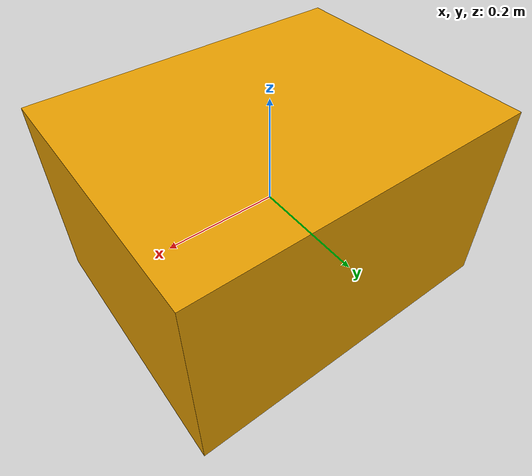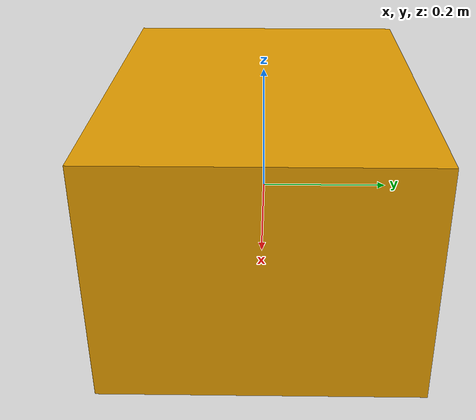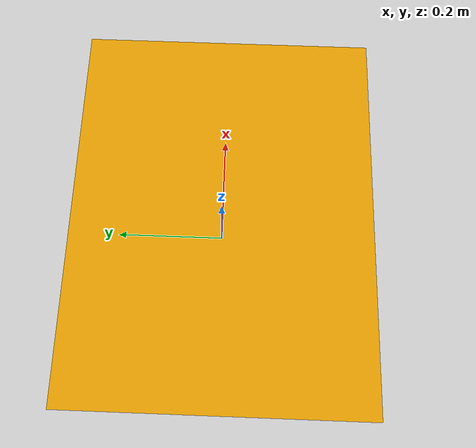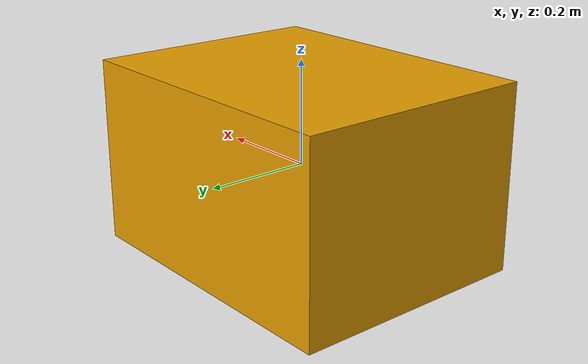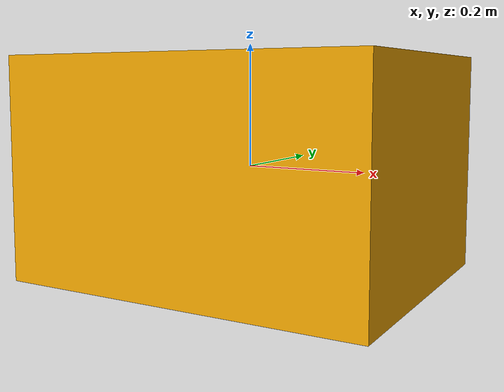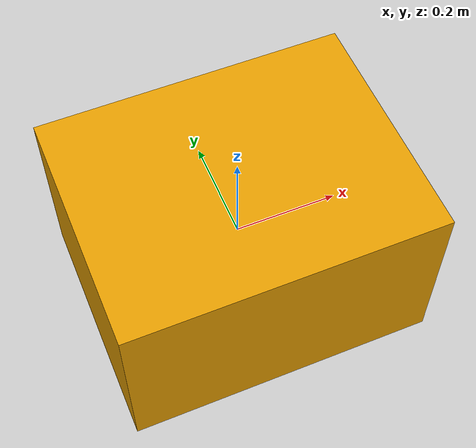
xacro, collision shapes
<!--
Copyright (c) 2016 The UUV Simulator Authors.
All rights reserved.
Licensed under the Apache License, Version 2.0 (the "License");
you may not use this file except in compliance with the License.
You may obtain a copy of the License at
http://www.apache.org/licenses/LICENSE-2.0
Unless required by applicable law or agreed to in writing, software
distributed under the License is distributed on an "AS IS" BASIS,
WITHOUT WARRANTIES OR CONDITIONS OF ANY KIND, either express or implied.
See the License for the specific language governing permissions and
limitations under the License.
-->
<?xml version="1.0"?>
<robot name="beluga" xmlns:xacro="http://www.ros.org/wiki/xacro" >
  <!-- Set some variables -->
  <xacro:arg name="namespace" default="beluga"/>
  <xacro:arg name="debug" default="1"/>
  <xacro:arg name="inertial_reference_frame" default="world"/>

  <!-- Insert the ROV macro file -->
  <xacro:include filename="$(find beluga_simulator)/urdf/beluga_base.xacro"/>

  <!-- Create the ROV -->
  <xacro:beluga_base
    namespace="$(arg namespace)"
    debug="$(arg debug)"
    inertial_reference_frame="$(arg inertial_reference_frame)"/>

  <!-- Joint state publisher plugin -->

</robot>

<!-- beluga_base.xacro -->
<robot name="beluga" xmlns:xacro="http://www.ros.org/wiki/xacro">
  <xacro:macro name="beluga_base" params="namespace debug inertial_reference_frame">

  <!-- Import xacros -->

  <!-- Define Parameters -->
  <xacro:property name="mass" value="20"/>
  <xacro:property name="volume" value="0.011054"/>
  <!-- Centre of gravity -->
  <xacro:property name="cog" value="0 0.005 -.03"/>
  <!-- Centre of buoyancy -->
  <xacro:property name="cob" value="0 0 0"/>
  <xacro:property name="rho" value="1028"/>

  <!-- X, Y and Z dimensions -->
  <xacro:property name="x_size" value="0.448"/>
  <xacro:property name="y_size" value="0.2384"/>
  <xacro:property name="z_size" value="0.28066"/>

  <xacro:property name="equivalent_radius" value="${0.5*z_size}"/>

  <!-- Frame -->
  <link name="${namespace}/base_link">
    <inertial>
      <mass value="${mass}"/>
      <origin xyz="${cog}" rpy = "0 0 0"/>
      <inertia ixx="0.26"  iyy="0.40"  izz="0.35"
               ixy="0.001" iyz="0.001" ixz="0.02"/>
    </inertial>

    <!-- Main Body -->
    <visual>
      <origin xyz="0 0 0" rpy="0 0 0"/>
      <geometry>
        <box size="0.48538 0.27 0.327"/>
      </geometry>
    </visual>
    <collision>
      <origin xyz="0 0 0" rpy="0 0 0"/>
      <geometry>
        <box size="0.6 0.47 0.36"/>
      </geometry>
    </collision>

    <!-- Left Front Thruster Mount -->
    <visual>
      <origin xyz="0.27043 0.195 -0.025" rpy="0 0 -${pi}"/>
        <geometry>
          <mesh filename="file://$(find beluga_simulator)/meshes/angled_thruster_mount.dae" scale="0.001 0.001 0.001"/>
        </geometry>
    </visual>

    <!-- Right Front Thruster Mount -->
    <visual>
      <origin xyz="0.27043 -0.195 0.025" rpy="${pi} 0 -${pi}"/>
        <geometry>
          <mesh filename="file://$(find beluga_simulator)/meshes/angled_thruster_mount.dae" scale="0.001 0.001 0.001"/>
        </geometry>
    </visual>

    <!-- Left Back Thruster Mount -->
    <visual>
      <origin xyz="-0.27043 0.195 0.025" rpy="0 ${pi} -${pi}"/>
        <geometry>
          <mesh filename="file://$(find beluga_simulator)/meshes/angled_thruster_mount.dae" scale="0.001 0.001 0.001"/>
        </geometry>
    </visual>

    <!-- Right Back Thruster Mount -->
    <visual>
      <origin xyz="-0.27043 -0.195 -0.025" rpy="0 0 0"/>
        <geometry>
          <mesh filename="file://$(find beluga_simulator)/meshes/angled_thruster_mount.dae" scale="0.001 0.001 0.001"/>
        </geometry>
    </visual>

    <!-- Left Middle Thruster Mount -->
    <visual>
      <origin xyz="0 0.165 -0.035" rpy="0 0 0"/>
      <geometry>
        <box size="0.09 0.06 0.05"/>
      </geometry>
    </visual>

    <!-- Right Middle Thruster Mount -->
    <visual>
      <origin xyz="0 -0.165 -0.035" rpy="0 0 0"/>
      <geometry>
        <box size="0.05 0.06 0.05"/>
      </geometry>
    </visual>

    <!-- Middle Back Thruster Mount -->
    <visual>
      <origin xyz="-0.26769 0 0.1336" rpy="0 0 0"/>
      <geometry>
        <box size="0.05 0.05 0.05"/>
      </geometry>
    </visual>

  </link>

  <link name="base_link"/>

  <joint name="${namespace}/dummy_joint" type="fixed">
     <parent link="base_link"/>
     <child link="${namespace}/base_link"/>
  </joint>

    <xacro:include filename="$(find beluga_simulator)/urdf/beluga_thrusters.xacro"/>

  </xacro:macro>
</robot>

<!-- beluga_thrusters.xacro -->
<robot xmlns:xacro="http://www.ros.org/wiki/xacro">
  <!-- Thrusters -->
  <xacro:include filename="$(find beluga_simulator)/urdf/beluga_snippets.xacro"/>

  <!-- Left Front Thruster -->
  <xacro:thruster_macro
    robot_namespace="${namespace}"
    thruster_id="1"
    rotor_constant="0.17">
    <origin xyz="0.27743 0.188 0" rpy="0 0 -${0.25*pi}" />
  </xacro:thruster_macro>

  <!-- Right Front Thruster -->
  <xacro:thruster_macro
    robot_namespace="${namespace}"
    thruster_id="2"
    rotor_constant="0.17">
    <origin xyz="0.27743 -0.188 0" rpy="0 0 ${0.25*pi}" />
  </xacro:thruster_macro>

  <!-- Left Back Thruster -->
  <xacro:thruster_macro
    robot_namespace="${namespace}"
    thruster_id="3"
    rotor_constant="0.17">
    <origin xyz="-0.27743 0.188 0" rpy="0 0 -${0.75*pi}" />
  </xacro:thruster_macro>

  <!-- Left Back Thruster -->
  <xacro:thruster_macro
    robot_namespace="${namespace}"
    thruster_id="4"
    rotor_constant="0.17">
    <origin xyz="-0.27743 -0.188 0" rpy="0 0 ${0.75*pi}" />
  </xacro:thruster_macro>

  <!-- Left Middle Thruster -->
  <xacro:thruster_macro
    robot_namespace="${namespace}"
    thruster_id="5"
    rotor_constant="0.17">
    <origin xyz="0 0.195 0" rpy="0 -${0.5*pi} 0" />
  </xacro:thruster_macro>

  <!-- Right Middle Thruster -->
  <xacro:thruster_macro
    robot_namespace="${namespace}"
    thruster_id="6"
    rotor_constant="0.17">
    <origin xyz="0 -0.195 0" rpy="0 -${0.5*pi} 0" />
  </xacro:thruster_macro>

  <!-- Middle Back Thruster -->
  <xacro:thruster_macro
    robot_namespace="${namespace}"
    thruster_id="7"
    rotor_constant="0.17">
    <origin xyz="-0.29169 0 0.16908" rpy="0 -${0.5*pi} 0" />
  </xacro:thruster_macro>

</robot>

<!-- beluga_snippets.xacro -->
<robot xmlns:xacro="http://www.ros.org/wiki/xacro">
  <xacro:property name="prop_mesh_file" value="file://$(find beluga_simulator)/meshes/propeller.dae"/>

  <xacro:include filename="$(find beluga_simulator)/urdf/thruster_snippets.xacro"/>

  <!-- Thruster joint and link snippet -->
  <xacro:macro name="thruster_macro"
    params="robot_namespace thruster_id rotor_constant *origin">
    <xacro:thruster_module_first_order_basic_fcn_macro
      namespace="${robot_namespace}"
      thruster_id="${thruster_id}"
      mesh_filename="${prop_mesh_file}"
      dyn_time_constant="0.01"
      rotor_constant="${rotor_constant}">
      <xacro:insert_block name="origin"/>
    </xacro:thruster_module_first_order_basic_fcn_macro>
  </xacro:macro>

</robot>

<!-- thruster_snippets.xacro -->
<robot xmlns:xacro="http://www.ros.org/wiki/xacro">

  <!-- ROTOR DYNAMICS MACROS -->

  <!-- First order dynamics -->

  <xacro:macro name="rotor_dyn_first_order_macro" params="time_constant">
    <dynamics>
      <type>FirstOrder</type>
      <timeConstant>${time_constant}</timeConstant>
    </dynamics>
  </xacro:macro>

  <!--
    MACROS FOR CONVERSION FUNCTIONS BETWEEN ROTOR'S ANG. VELOCITY AND
    THRUSTER FORCE
  -->

  <!--
    1) Basic curve
      Input: x
      Output: thrust
      Function: thrust = rotorConstant * x * abs(x)
  -->
  <xacro:macro name="thruster_cf_basic_macro"
    params="rotor_constant">
    <conversion>
      <type>Basic</type>
      <rotorConstant>${rotor_constant}</rotorConstant>
    </conversion>
  </xacro:macro>

  <xacro:macro name="thruster_cf_dead_zone_macro"
    params="rotor_constant_l
            rotor_constant_r
            delta_l
            delta_r">
    <conversion>
      <type>Bessa</type>
      <rotorConstantL>${rotor_constant_l}</rotorConstantL>
      <rotorConstantR>${rotor_constant_r}</rotorConstantR>
      <deltaL>${delta_l}</deltaL>
      <deltaR>${delta_r}</deltaR>
    </conversion>
  </xacro:macro>

  <xacro:macro name="thruster_cf_linear_interp_macro"
    params="input_values
            output_values">
    <conversion>
      <type>LinearInterp</type>
      <inputValues>${input_values}</inputValues>
      <outputValues>${output_values}</outputValues>
    </conversion>
  </xacro:macro>

  <!-- Thruster module macros  -->

  <xacro:macro name="generic_thruster_macro"
    params="namespace
            thruster_id
            *origin
            mesh_filename">
    <joint name="${namespace}/thruster_${thruster_id}_joint" type="continuous">
      <xacro:insert_block name="origin"/>
      <axis xyz="1 0 0"/>
      <parent link="${namespace}/base_link"/>
      <child link="${namespace}/thruster_${thruster_id}"/>
    </joint>

    <link name="${namespace}/thruster_${thruster_id}">
      <xacro:box_inertial x="0" y="0" z="0" mass="0.001">
        <origin xyz="0 0 0" rpy="0 0 0"/>
      </xacro:box_inertial>
      <visual>
        <origin rpy="0 0 0" xyz="0 0 0"/>
        <geometry>
          <mesh filename="${mesh_filename}" scale="1 1 1"/>
        </geometry>
      </visual>
      <collision>
        <!-- todo: gazebo needs a collision volume or it will ignore the pose of
           the joint that leads to this link (and assume it to be the identity) -->
        <geometry>
          <cylinder length="0.000001" radius="0.000001"/>
        </geometry>
        <origin xyz="0 0 0" rpy="0 0 0"/>
      </collision>
      <inertial>
        <mass value="${mass}"/>
        <origin xyz="${cog}" rpy = "0 0 0"/>
        <inertia ixx="0.01" iyy="0.01" izz="0.01"
                 ixy="0.01" iyz="0.01" ixz="0.01"/>
      </inertial>
    </link>

  </xacro:macro>

  <!--
    Thruster model with first order dynamic model for the rotor dynamics
    and a proportional non-linear steady-state conversion from the rotor's
    angular velocity to output thrust force
  -->

  <xacro:macro name="thruster_module_first_order_basic_fcn_macro"
      params="namespace
              thruster_id
              *origin
              mesh_filename
              dyn_time_constant
              rotor_constant">
    <xacro:generic_thruster_macro
      namespace="${namespace}"
      thruster_id="${thruster_id}"
      mesh_filename="${mesh_filename}">
      <xacro:insert_block name="origin"/>
    </xacro:generic_thruster_macro>
  </xacro:macro>

</robot>
